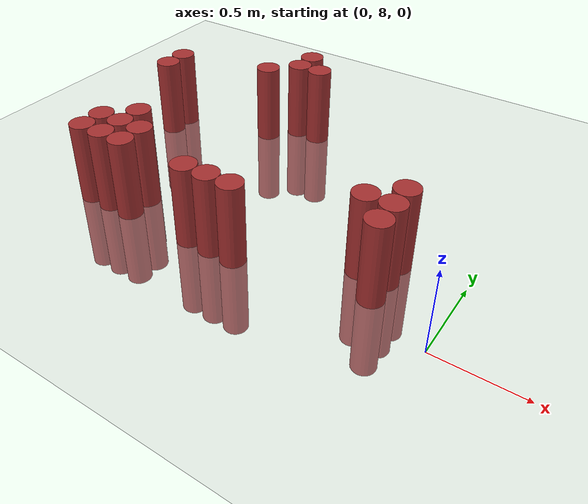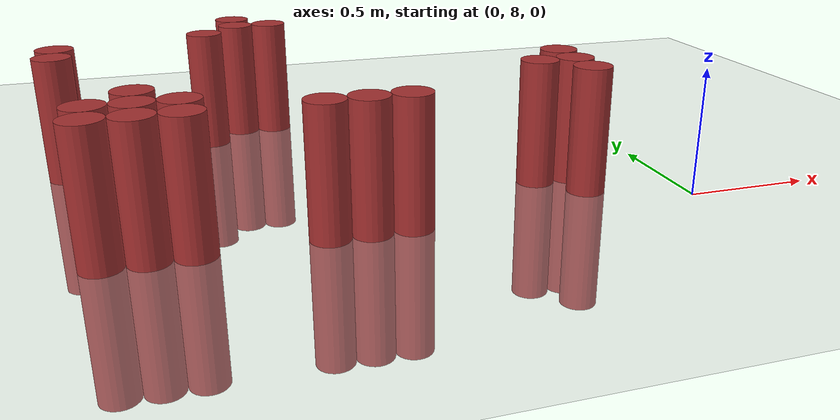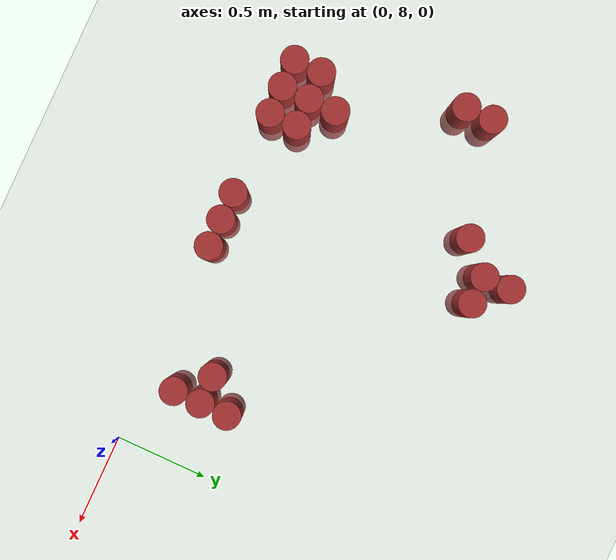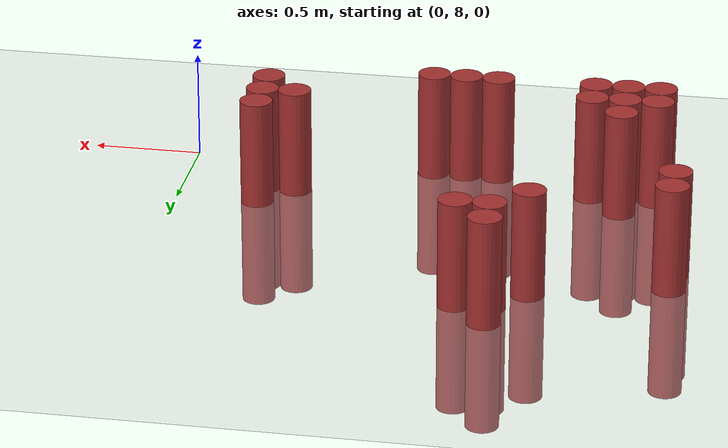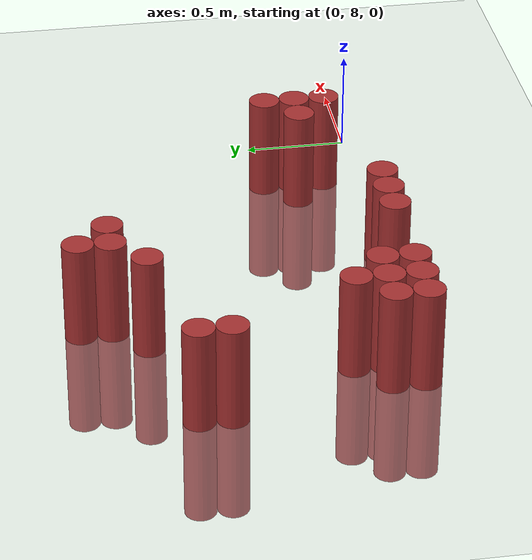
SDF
<sdf version="1.6">
 <world name="default">
  <model name="ground_plane">
   <static>1</static>
   <link name="link">
    <collision name="collision">
     <geometry><plane><normal>0 0 1</normal><size>100 100</size></plane></geometry>
     <surface><friction><ode><mu>100</mu><mu2>50</mu2></ode></friction></surface>
    </collision>
    <visual name="visual">
     <cast_shadows>0</cast_shadows>
     <geometry><plane><normal>0 0 1</normal><size>100 100</size></plane></geometry>
     <material>
      <script><uri>file://media/materials/scripts/gazebo.material</uri><name>Gazebo/Grey</name></script>
     </material>
    </visual>
   </link>
  </model>
  <model name="unit_cylinder_213">
   <static>1</static>
   <pose>-2.325000 8.925000 0.000000 0.000000 0.000000 0.000000</pose>
   <link name="link">
    <inertial>
     <mass>1</mass>
     <inertia><ixx>0.145833</ixx><ixy>0</ixy><ixz>0</ixz><iyy>0.145833</iyy><iyz>0</iyz><izz>0.125</izz></inertia>
    </inertial>
    <collision name="collision">
     <geometry><cylinder><radius>0.075000</radius><length>1</length></cylinder></geometry>
    </collision>
    <visual name="visual">
     <geometry><cylinder><radius>0.075000</radius><length>1</length></cylinder></geometry>
     <material>
      <ambient>0.648000 0.192000 0.192000 1</ambient>
      <diffuse>0.648000 0.192000 0.192000 1</diffuse>
     </material>
     <material>
      <script><name>Gazebo/Grey</name><uri>file://media/materials/scripts/gazebo.material</uri></script>
     </material>
    </visual>
    <sensor name="sensor_contact" type="contact"><contact><collision>collision</collision></contact></sensor>
   </link>
   <plugin filename="gz-sim-touchplugin-system" name="gz::sim::systems::TouchPlugin">
    <target>robot</target>
    <namespace>robot</namespace>
    <time>0.001</time>
    <enabled>true</enabled>
   </plugin>
  </model>
  <model name="unit_cylinder_214">
   <static>1</static>
   <pose>-2.325000 9.075000 0.000000 0.000000 0.000000 0.000000</pose>
   <link name="link">
    <inertial>
     <mass>1</mass>
     <inertia><ixx>0.145833</ixx><ixy>0</ixy><ixz>0</ixz><iyy>0.145833</iyy><iyz>0</iyz><izz>0.125</izz></inertia>
    </inertial>
    <collision name="collision">
     <geometry><cylinder><radius>0.075000</radius><length>1</length></cylinder></geometry>
    </collision>
    <visual name="visual">
     <geometry><cylinder><radius>0.075000</radius><length>1</length></cylinder></geometry>
     <material>
      <ambient>0.648000 0.192000 0.192000 1</ambient>
      <diffuse>0.648000 0.192000 0.192000 1</diffuse>
     </material>
     <material>
      <script><name>Gazebo/Grey</name><uri>file://media/materials/scripts/gazebo.material</uri></script>
     </material>
    </visual>
    <sensor name="sensor_contact" type="contact"><contact><collision>collision</collision></contact></sensor>
   </link>
   <plugin filename="gz-sim-touchplugin-system" name="gz::sim::systems::TouchPlugin">
    <target>robot</target>
    <namespace>robot</namespace>
    <time>0.001</time>
    <enabled>true</enabled>
   </plugin>
  </model>
  <model name="unit_cylinder_219">
   <static>1</static>
   <pose>-2.175000 8.025000 0.000000 0.000000 0.000000 0.000000</pose>
   <link name="link">
    <inertial>
     <mass>1</mass>
     <inertia><ixx>0.145833</ixx><ixy>0</ixy><ixz>0</ixz><iyy>0.145833</iyy><iyz>0</iyz><izz>0.125</izz></inertia>
    </inertial>
    <collision name="collision">
     <geometry><cylinder><radius>0.075000</radius><length>1</length></cylinder></geometry>
    </collision>
    <visual name="visual">
     <geometry><cylinder><radius>0.075000</radius><length>1</length></cylinder></geometry>
     <material>
      <ambient>0.648000 0.192000 0.192000 1</ambient>
      <diffuse>0.648000 0.192000 0.192000 1</diffuse>
     </material>
     <material>
      <script><name>Gazebo/Grey</name><uri>file://media/materials/scripts/gazebo.material</uri></script>
     </material>
    </visual>
    <sensor name="sensor_contact" type="contact"><contact><collision>collision</collision></contact></sensor>
   </link>
   <plugin filename="gz-sim-touchplugin-system" name="gz::sim::systems::TouchPlugin">
    <target>robot</target>
    <namespace>robot</namespace>
    <time>0.001</time>
    <enabled>true</enabled>
   </plugin>
  </model>
  <model name="unit_cylinder_220">
   <static>1</static>
   <pose>-2.175000 8.175000 0.000000 0.000000 0.000000 0.000000</pose>
   <link name="link">
    <inertial>
     <mass>1</mass>
     <inertia><ixx>0.145833</ixx><ixy>0</ixy><ixz>0</ixz><iyy>0.145833</iyy><iyz>0</iyz><izz>0.125</izz></inertia>
    </inertial>
    <collision name="collision">
     <geometry><cylinder><radius>0.075000</radius><length>1</length></cylinder></geometry>
    </collision>
    <visual name="visual">
     <geometry><cylinder><radius>0.075000</radius><length>1</length></cylinder></geometry>
     <material>
      <ambient>0.648000 0.192000 0.192000 1</ambient>
      <diffuse>0.648000 0.192000 0.192000 1</diffuse>
     </material>
     <material>
      <script><name>Gazebo/Grey</name><uri>file://media/materials/scripts/gazebo.material</uri></script>
     </material>
    </visual>
    <sensor name="sensor_contact" type="contact"><contact><collision>collision</collision></contact></sensor>
   </link>
   <plugin filename="gz-sim-touchplugin-system" name="gz::sim::systems::TouchPlugin">
    <target>robot</target>
    <namespace>robot</namespace>
    <time>0.001</time>
    <enabled>true</enabled>
   </plugin>
  </model>
  <model name="unit_cylinder_224">
   <static>1</static>
   <pose>-2.025000 8.025000 0.000000 0.000000 0.000000 0.000000</pose>
   <link name="link">
    <inertial>
     <mass>1</mass>
     <inertia><ixx>0.145833</ixx><ixy>0</ixy><ixz>0</ixz><iyy>0.145833</iyy><iyz>0</iyz><izz>0.125</izz></inertia>
    </inertial>
    <collision name="collision">
     <geometry><cylinder><radius>0.075000</radius><length>1</length></cylinder></geometry>
    </collision>
    <visual name="visual">
     <geometry><cylinder><radius>0.075000</radius><length>1</length></cylinder></geometry>
     <material>
      <ambient>0.648000 0.192000 0.192000 1</ambient>
      <diffuse>0.648000 0.192000 0.192000 1</diffuse>
     </material>
     <material>
      <script><name>Gazebo/Grey</name><uri>file://media/materials/scripts/gazebo.material</uri></script>
     </material>
    </visual>
    <sensor name="sensor_contact" type="contact"><contact><collision>collision</collision></contact></sensor>
   </link>
   <plugin filename="gz-sim-touchplugin-system" name="gz::sim::systems::TouchPlugin">
    <target>robot</target>
    <namespace>robot</namespace>
    <time>0.001</time>
    <enabled>true</enabled>
   </plugin>
  </model>
  <model name="unit_cylinder_225">
   <static>1</static>
   <pose>-2.025000 8.175000 0.000000 0.000000 0.000000 0.000000</pose>
   <link name="link">
    <inertial>
     <mass>1</mass>
     <inertia><ixx>0.145833</ixx><ixy>0</ixy><ixz>0</ixz><iyy>0.145833</iyy><iyz>0</iyz><izz>0.125</izz></inertia>
    </inertial>
    <collision name="collision">
     <geometry><cylinder><radius>0.075000</radius><length>1</length></cylinder></geometry>
    </collision>
    <visual name="visual">
     <geometry><cylinder><radius>0.075000</radius><length>1</length></cylinder></geometry>
     <material>
      <ambient>0.648000 0.192000 0.192000 1</ambient>
      <diffuse>0.648000 0.192000 0.192000 1</diffuse>
     </material>
     <material>
      <script><name>Gazebo/Grey</name><uri>file://media/materials/scripts/gazebo.material</uri></script>
     </material>
    </visual>
    <sensor name="sensor_contact" type="contact"><contact><collision>collision</collision></contact></sensor>
   </link>
   <plugin filename="gz-sim-touchplugin-system" name="gz::sim::systems::TouchPlugin">
    <target>robot</target>
    <namespace>robot</namespace>
    <time>0.001</time>
    <enabled>true</enabled>
   </plugin>
  </model>
  <model name="unit_cylinder_226">
   <static>1</static>
   <pose>-2.025000 8.325000 0.000000 0.000000 0.000000 0.000000</pose>
   <link name="link">
    <inertial>
     <mass>1</mass>
     <inertia><ixx>0.145833</ixx><ixy>0</ixy><ixz>0</ixz><iyy>0.145833</iyy><iyz>0</iyz><izz>0.125</izz></inertia>
    </inertial>
    <collision name="collision">
     <geometry><cylinder><radius>0.075000</radius><length>1</length></cylinder></geometry>
    </collision>
    <visual name="visual">
     <geometry><cylinder><radius>0.075000</radius><length>1</length></cylinder></geometry>
     <material>
      <ambient>0.648000 0.192000 0.192000 1</ambient>
      <diffuse>0.648000 0.192000 0.192000 1</diffuse>
     </material>
     <material>
      <script><name>Gazebo/Grey</name><uri>file://media/materials/scripts/gazebo.material</uri></script>
     </material>
    </visual>
    <sensor name="sensor_contact" type="contact"><contact><collision>collision</collision></contact></sensor>
   </link>
   <plugin filename="gz-sim-touchplugin-system" name="gz::sim::systems::TouchPlugin">
    <target>robot</target>
    <namespace>robot</namespace>
    <time>0.001</time>
    <enabled>true</enabled>
   </plugin>
  </model>
  <model name="unit_cylinder_229">
   <static>1</static>
   <pose>-1.875000 8.025000 0.000000 0.000000 0.000000 0.000000</pose>
   <link name="link">
    <inertial>
     <mass>1</mass>
     <inertia><ixx>0.145833</ixx><ixy>0</ixy><ixz>0</ixz><iyy>0.145833</iyy><iyz>0</iyz><izz>0.125</izz></inertia>
    </inertial>
    <collision name="collision">
     <geometry><cylinder><radius>0.075000</radius><length>1</length></cylinder></geometry>
    </collision>
    <visual name="visual">
     <geometry><cylinder><radius>0.075000</radius><length>1</length></cylinder></geometry>
     <material>
      <ambient>0.648000 0.192000 0.192000 1</ambient>
      <diffuse>0.648000 0.192000 0.192000 1</diffuse>
     </material>
     <material>
      <script><name>Gazebo/Grey</name><uri>file://media/materials/scripts/gazebo.material</uri></script>
     </material>
    </visual>
    <sensor name="sensor_contact" type="contact"><contact><collision>collision</collision></contact></sensor>
   </link>
   <plugin filename="gz-sim-touchplugin-system" name="gz::sim::systems::TouchPlugin">
    <target>robot</target>
    <namespace>robot</namespace>
    <time>0.001</time>
    <enabled>true</enabled>
   </plugin>
  </model>
  <model name="unit_cylinder_230">
   <static>1</static>
   <pose>-1.875000 8.175000 0.000000 0.000000 0.000000 0.000000</pose>
   <link name="link">
    <inertial>
     <mass>1</mass>
     <inertia><ixx>0.145833</ixx><ixy>0</ixy><ixz>0</ixz><iyy>0.145833</iyy><iyz>0</iyz><izz>0.125</izz></inertia>
    </inertial>
    <collision name="collision">
     <geometry><cylinder><radius>0.075000</radius><length>1</length></cylinder></geometry>
    </collision>
    <visual name="visual">
     <geometry><cylinder><radius>0.075000</radius><length>1</length></cylinder></geometry>
     <material>
      <ambient>0.648000 0.192000 0.192000 1</ambient>
      <diffuse>0.648000 0.192000 0.192000 1</diffuse>
     </material>
     <material>
      <script><name>Gazebo/Grey</name><uri>file://media/materials/scripts/gazebo.material</uri></script>
     </material>
    </visual>
    <sensor name="sensor_contact" type="contact"><contact><collision>collision</collision></contact></sensor>
   </link>
   <plugin filename="gz-sim-touchplugin-system" name="gz::sim::systems::TouchPlugin">
    <target>robot</target>
    <namespace>robot</namespace>
    <time>0.001</time>
    <enabled>true</enabled>
   </plugin>
  </model>
  <model name="unit_cylinder_237">
   <static>1</static>
   <pose>-1.725000 9.225000 0.000000 0.000000 0.000000 0.000000</pose>
   <link name="link">
    <inertial>
     <mass>1</mass>
     <inertia><ixx>0.145833</ixx><ixy>0</ixy><ixz>0</ixz><iyy>0.145833</iyy><iyz>0</iyz><izz>0.125</izz></inertia>
    </inertial>
    <collision name="collision">
     <geometry><cylinder><radius>0.075000</radius><length>1</length></cylinder></geometry>
    </collision>
    <visual name="visual">
     <geometry><cylinder><radius>0.075000</radius><length>1</length></cylinder></geometry>
     <material>
      <ambient>0.648000 0.192000 0.192000 1</ambient>
      <diffuse>0.648000 0.192000 0.192000 1</diffuse>
     </material>
     <material>
      <script><name>Gazebo/Grey</name><uri>file://media/materials/scripts/gazebo.material</uri></script>
     </material>
    </visual>
    <sensor name="sensor_contact" type="contact"><contact><collision>collision</collision></contact></sensor>
   </link>
   <plugin filename="gz-sim-touchplugin-system" name="gz::sim::systems::TouchPlugin">
    <target>robot</target>
    <namespace>robot</namespace>
    <time>0.001</time>
    <enabled>true</enabled>
   </plugin>
  </model>
  <model name="unit_cylinder_242">
   <static>1</static>
   <pose>-1.575000 9.375000 0.000000 0.000000 0.000000 0.000000</pose>
   <link name="link">
    <inertial>
     <mass>1</mass>
     <inertia><ixx>0.145833</ixx><ixy>0</ixy><ixz>0</ixz><iyy>0.145833</iyy><iyz>0</iyz><izz>0.125</izz></inertia>
    </inertial>
    <collision name="collision">
     <geometry><cylinder><radius>0.075000</radius><length>1</length></cylinder></geometry>
    </collision>
    <visual name="visual">
     <geometry><cylinder><radius>0.075000</radius><length>1</length></cylinder></geometry>
     <material>
      <ambient>0.648000 0.192000 0.192000 1</ambient>
      <diffuse>0.648000 0.192000 0.192000 1</diffuse>
     </material>
     <material>
      <script><name>Gazebo/Grey</name><uri>file://media/materials/scripts/gazebo.material</uri></script>
     </material>
    </visual>
    <sensor name="sensor_contact" type="contact"><contact><collision>collision</collision></contact></sensor>
   </link>
   <plugin filename="gz-sim-touchplugin-system" name="gz::sim::systems::TouchPlugin">
    <target>robot</target>
    <namespace>robot</namespace>
    <time>0.001</time>
    <enabled>true</enabled>
   </plugin>
  </model>
  <model name="unit_cylinder_243">
   <static>1</static>
   <pose>-1.575000 9.525000 0.000000 0.000000 0.000000 0.000000</pose>
   <link name="link">
    <inertial>
     <mass>1</mass>
     <inertia><ixx>0.145833</ixx><ixy>0</ixy><ixz>0</ixz><iyy>0.145833</iyy><iyz>0</iyz><izz>0.125</izz></inertia>
    </inertial>
    <collision name="collision">
     <geometry><cylinder><radius>0.075000</radius><length>1</length></cylinder></geometry>
    </collision>
    <visual name="visual">
     <geometry><cylinder><radius>0.075000</radius><length>1</length></cylinder></geometry>
     <material>
      <ambient>0.648000 0.192000 0.192000 1</ambient>
      <diffuse>0.648000 0.192000 0.192000 1</diffuse>
     </material>
     <material>
      <script><name>Gazebo/Grey</name><uri>file://media/materials/scripts/gazebo.material</uri></script>
     </material>
    </visual>
    <sensor name="sensor_contact" type="contact"><contact><collision>collision</collision></contact></sensor>
   </link>
   <plugin filename="gz-sim-touchplugin-system" name="gz::sim::systems::TouchPlugin">
    <target>robot</target>
    <namespace>robot</namespace>
    <time>0.001</time>
    <enabled>true</enabled>
   </plugin>
  </model>
  <model name="unit_cylinder_248">
   <static>1</static>
   <pose>-1.425000 8.025000 0.000000 0.000000 0.000000 0.000000</pose>
   <link name="link">
    <inertial>
     <mass>1</mass>
     <inertia><ixx>0.145833</ixx><ixy>0</ixy><ixz>0</ixz><iyy>0.145833</iyy><iyz>0</iyz><izz>0.125</izz></inertia>
    </inertial>
    <collision name="collision">
     <geometry><cylinder><radius>0.075000</radius><length>1</length></cylinder></geometry>
    </collision>
    <visual name="visual">
     <geometry><cylinder><radius>0.075000</radius><length>1</length></cylinder></geometry>
     <material>
      <ambient>0.648000 0.192000 0.192000 1</ambient>
      <diffuse>0.648000 0.192000 0.192000 1</diffuse>
     </material>
     <material>
      <script><name>Gazebo/Grey</name><uri>file://media/materials/scripts/gazebo.material</uri></script>
     </material>
    </visual>
    <sensor name="sensor_contact" type="contact"><contact><collision>collision</collision></contact></sensor>
   </link>
   <plugin filename="gz-sim-touchplugin-system" name="gz::sim::systems::TouchPlugin">
    <target>robot</target>
    <namespace>robot</namespace>
    <time>0.001</time>
    <enabled>true</enabled>
   </plugin>
  </model>
  <model name="unit_cylinder_249">
   <static>1</static>
   <pose>-1.425000 9.375000 0.000000 0.000000 0.000000 0.000000</pose>
   <link name="link">
    <inertial>
     <mass>1</mass>
     <inertia><ixx>0.145833</ixx><ixy>0</ixy><ixz>0</ixz><iyy>0.145833</iyy><iyz>0</iyz><izz>0.125</izz></inertia>
    </inertial>
    <collision name="collision">
     <geometry><cylinder><radius>0.075000</radius><length>1</length></cylinder></geometry>
    </collision>
    <visual name="visual">
     <geometry><cylinder><radius>0.075000</radius><length>1</length></cylinder></geometry>
     <material>
      <ambient>0.648000 0.192000 0.192000 1</ambient>
      <diffuse>0.648000 0.192000 0.192000 1</diffuse>
     </material>
     <material>
      <script><name>Gazebo/Grey</name><uri>file://media/materials/scripts/gazebo.material</uri></script>
     </material>
    </visual>
    <sensor name="sensor_contact" type="contact"><contact><collision>collision</collision></contact></sensor>
   </link>
   <plugin filename="gz-sim-touchplugin-system" name="gz::sim::systems::TouchPlugin">
    <target>robot</target>
    <namespace>robot</namespace>
    <time>0.001</time>
    <enabled>true</enabled>
   </plugin>
  </model>
  <model name="unit_cylinder_256">
   <static>1</static>
   <pose>-1.275000 8.025000 0.000000 0.000000 0.000000 0.000000</pose>
   <link name="link">
    <inertial>
     <mass>1</mass>
     <inertia><ixx>0.145833</ixx><ixy>0</ixy><ixz>0</ixz><iyy>0.145833</iyy><iyz>0</iyz><izz>0.125</izz></inertia>
    </inertial>
    <collision name="collision">
     <geometry><cylinder><radius>0.075000</radius><length>1</length></cylinder></geometry>
    </collision>
    <visual name="visual">
     <geometry><cylinder><radius>0.075000</radius><length>1</length></cylinder></geometry>
     <material>
      <ambient>0.648000 0.192000 0.192000 1</ambient>
      <diffuse>0.648000 0.192000 0.192000 1</diffuse>
     </material>
     <material>
      <script><name>Gazebo/Grey</name><uri>file://media/materials/scripts/gazebo.material</uri></script>
     </material>
    </visual>
    <sensor name="sensor_contact" type="contact"><contact><collision>collision</collision></contact></sensor>
   </link>
   <plugin filename="gz-sim-touchplugin-system" name="gz::sim::systems::TouchPlugin">
    <target>robot</target>
    <namespace>robot</namespace>
    <time>0.001</time>
    <enabled>true</enabled>
   </plugin>
  </model>
  <model name="unit_cylinder_260">
   <static>1</static>
   <pose>-1.125000 8.025000 0.000000 0.000000 0.000000 0.000000</pose>
   <link name="link">
    <inertial>
     <mass>1</mass>
     <inertia><ixx>0.145833</ixx><ixy>0</ixy><ixz>0</ixz><iyy>0.145833</iyy><iyz>0</iyz><izz>0.125</izz></inertia>
    </inertial>
    <collision name="collision">
     <geometry><cylinder><radius>0.075000</radius><length>1</length></cylinder></geometry>
    </collision>
    <visual name="visual">
     <geometry><cylinder><radius>0.075000</radius><length>1</length></cylinder></geometry>
     <material>
      <ambient>0.648000 0.192000 0.192000 1</ambient>
      <diffuse>0.648000 0.192000 0.192000 1</diffuse>
     </material>
     <material>
      <script><name>Gazebo/Grey</name><uri>file://media/materials/scripts/gazebo.material</uri></script>
     </material>
    </visual>
    <sensor name="sensor_contact" type="contact"><contact><collision>collision</collision></contact></sensor>
   </link>
   <plugin filename="gz-sim-touchplugin-system" name="gz::sim::systems::TouchPlugin">
    <target>robot</target>
    <namespace>robot</namespace>
    <time>0.001</time>
    <enabled>true</enabled>
   </plugin>
  </model>
  <model name="unit_cylinder_265">
   <static>1</static>
   <pose>-0.525000 8.325000 0.000000 0.000000 0.000000 0.000000</pose>
   <link name="link">
    <inertial>
     <mass>1</mass>
     <inertia><ixx>0.145833</ixx><ixy>0</ixy><ixz>0</ixz><iyy>0.145833</iyy><iyz>0</iyz><izz>0.125</izz></inertia>
    </inertial>
    <collision name="collision">
     <geometry><cylinder><radius>0.075000</radius><length>1</length></cylinder></geometry>
    </collision>
    <visual name="visual">
     <geometry><cylinder><radius>0.075000</radius><length>1</length></cylinder></geometry>
     <material>
      <ambient>0.648000 0.192000 0.192000 1</ambient>
      <diffuse>0.648000 0.192000 0.192000 1</diffuse>
     </material>
     <material>
      <script><name>Gazebo/Grey</name><uri>file://media/materials/scripts/gazebo.material</uri></script>
     </material>
    </visual>
    <sensor name="sensor_contact" type="contact"><contact><collision>collision</collision></contact></sensor>
   </link>
   <plugin filename="gz-sim-touchplugin-system" name="gz::sim::systems::TouchPlugin">
    <target>robot</target>
    <namespace>robot</namespace>
    <time>0.001</time>
    <enabled>true</enabled>
   </plugin>
  </model>
  <model name="unit_cylinder_272">
   <static>1</static>
   <pose>-0.375000 8.175000 0.000000 0.000000 0.000000 0.000000</pose>
   <link name="link">
    <inertial>
     <mass>1</mass>
     <inertia><ixx>0.145833</ixx><ixy>0</ixy><ixz>0</ixz><iyy>0.145833</iyy><iyz>0</iyz><izz>0.125</izz></inertia>
    </inertial>
    <collision name="collision">
     <geometry><cylinder><radius>0.075000</radius><length>1</length></cylinder></geometry>
    </collision>
    <visual name="visual">
     <geometry><cylinder><radius>0.075000</radius><length>1</length></cylinder></geometry>
     <material>
      <ambient>0.648000 0.192000 0.192000 1</ambient>
      <diffuse>0.648000 0.192000 0.192000 1</diffuse>
     </material>
     <material>
      <script><name>Gazebo/Grey</name><uri>file://media/materials/scripts/gazebo.material</uri></script>
     </material>
    </visual>
    <sensor name="sensor_contact" type="contact"><contact><collision>collision</collision></contact></sensor>
   </link>
   <plugin filename="gz-sim-touchplugin-system" name="gz::sim::systems::TouchPlugin">
    <target>robot</target>
    <namespace>robot</namespace>
    <time>0.001</time>
    <enabled>true</enabled>
   </plugin>
  </model>
  <model name="unit_cylinder_273">
   <static>1</static>
   <pose>-0.375000 8.325000 0.000000 0.000000 0.000000 0.000000</pose>
   <link name="link">
    <inertial>
     <mass>1</mass>
     <inertia><ixx>0.145833</ixx><ixy>0</ixy><ixz>0</ixz><iyy>0.145833</iyy><iyz>0</iyz><izz>0.125</izz></inertia>
    </inertial>
    <collision name="collision">
     <geometry><cylinder><radius>0.075000</radius><length>1</length></cylinder></geometry>
    </collision>
    <visual name="visual">
     <geometry><cylinder><radius>0.075000</radius><length>1</length></cylinder></geometry>
     <material>
      <ambient>0.648000 0.192000 0.192000 1</ambient>
      <diffuse>0.648000 0.192000 0.192000 1</diffuse>
     </material>
     <material>
      <script><name>Gazebo/Grey</name><uri>file://media/materials/scripts/gazebo.material</uri></script>
     </material>
    </visual>
    <sensor name="sensor_contact" type="contact"><contact><collision>collision</collision></contact></sensor>
   </link>
   <plugin filename="gz-sim-touchplugin-system" name="gz::sim::systems::TouchPlugin">
    <target>robot</target>
    <namespace>robot</namespace>
    <time>0.001</time>
    <enabled>true</enabled>
   </plugin>
  </model>
  <model name="unit_cylinder_274">
   <static>1</static>
   <pose>-0.375000 8.475000 0.000000 0.000000 0.000000 0.000000</pose>
   <link name="link">
    <inertial>
     <mass>1</mass>
     <inertia><ixx>0.145833</ixx><ixy>0</ixy><ixz>0</ixz><iyy>0.145833</iyy><iyz>0</iyz><izz>0.125</izz></inertia>
    </inertial>
    <collision name="collision">
     <geometry><cylinder><radius>0.075000</radius><length>1</length></cylinder></geometry>
    </collision>
    <visual name="visual">
     <geometry><cylinder><radius>0.075000</radius><length>1</length></cylinder></geometry>
     <material>
      <ambient>0.648000 0.192000 0.192000 1</ambient>
      <diffuse>0.648000 0.192000 0.192000 1</diffuse>
     </material>
     <material>
      <script><name>Gazebo/Grey</name><uri>file://media/materials/scripts/gazebo.material</uri></script>
     </material>
    </visual>
    <sensor name="sensor_contact" type="contact"><contact><collision>collision</collision></contact></sensor>
   </link>
   <plugin filename="gz-sim-touchplugin-system" name="gz::sim::systems::TouchPlugin">
    <target>robot</target>
    <namespace>robot</namespace>
    <time>0.001</time>
    <enabled>true</enabled>
   </plugin>
  </model>
 </world>
</sdf>
